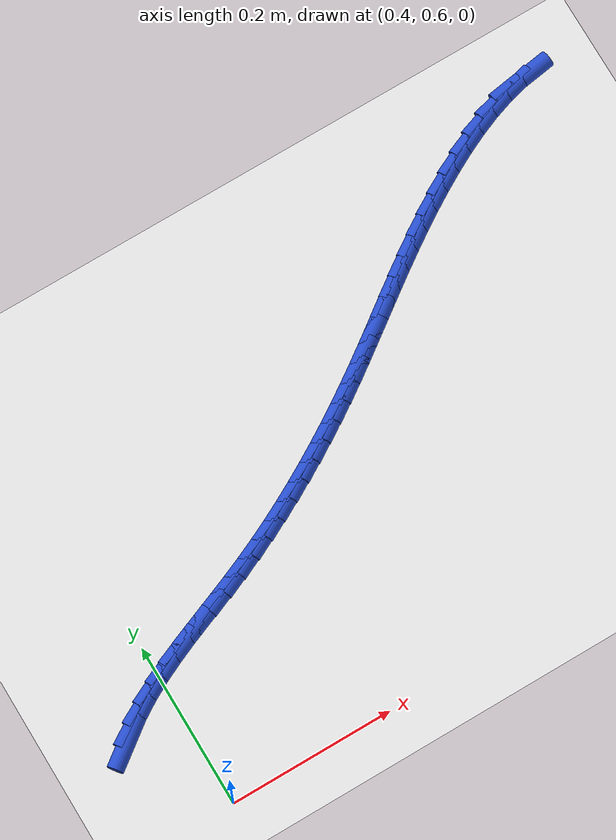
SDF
<sdf version="1.6">
 <world name="default">
  <model name="ground_plane">
   <static>1</static>
   <link name="link">
    <collision name="collision">
     <geometry><plane><normal>0 0 1</normal><size>100 100</size></plane></geometry>
     <surface><friction><ode><mu>100</mu><mu2>50</mu2></ode></friction></surface>
    </collision>
    <visual name="visual">
     <cast_shadows>0</cast_shadows>
     <geometry><plane><normal>0 0 1</normal><size>100 100</size></plane></geometry>
     <material>
      <script><uri>file://media/materials/scripts/gazebo.material</uri><name>Gazebo/WhiteGlow</name></script>
     </material>
    </visual>
   </link>
  </model>
  <model name="line">
   <link name="link_32">
    <pose>0.33855078986740716 0.7209870635358789 0.01 0 1.57 0.6444809370382992</pose>
    <collision name="collision">
     <geometry><cylinder><radius>0.01</radius><length>0.08</length></cylinder></geometry>
    </collision>
    <visual name="visual">
     <material>
      <script><name>Gazebo/Blue</name><uri>file://media/materials/scripts/gazebo.material</uri></script>
     </material>
     <geometry><cylinder><radius>0.01</radius><length>0.08</length></cylinder></geometry>
    </visual>
   </link>
   <link name="link_33">
    <pose>0.3580628552577548 0.735651007170612 0.01 0 1.57 0.5621185753499015</pose>
    <collision name="collision">
     <geometry><cylinder><radius>0.01</radius><length>0.08</length></cylinder></geometry>
    </collision>
    <visual name="visual">
     <material>
      <script><name>Gazebo/Blue</name><uri>file://media/materials/scripts/gazebo.material</uri></script>
     </material>
     <geometry><cylinder><radius>0.01</radius><length>0.08</length></cylinder></geometry>
    </visual>
   </link>
   <link name="link_34">
    <pose>0.3790080742850786 0.7488445007423732 0.01 0 1.57 0.49627526427810786</pose>
    <collision name="collision">
     <geometry><cylinder><radius>0.01</radius><length>0.08</length></cylinder></geometry>
    </collision>
    <visual name="visual">
     <material>
      <script><name>Gazebo/Blue</name><uri>file://media/materials/scripts/gazebo.material</uri></script>
     </material>
     <geometry><cylinder><radius>0.01</radius><length>0.08</length></cylinder></geometry>
    </visual>
   </link>
   <link name="link_35">
    <pose>0.40114118829294876 0.7608290489913966 0.01 0 1.57 0.44613655816575765</pose>
    <collision name="collision">
     <geometry><cylinder><radius>0.01</radius><length>0.08</length></cylinder></geometry>
    </collision>
    <visual name="visual">
     <material>
      <script><name>Gazebo/Blue</name><uri>file://media/materials/scripts/gazebo.material</uri></script>
     </material>
     <geometry><cylinder><radius>0.01</radius><length>0.08</length></cylinder></geometry>
    </visual>
   </link>
   <link name="link_36">
    <pose>0.42421693862493576 0.7718661566579151 0.01 0 1.57 0.4106589033545149</pose>
    <collision name="collision">
     <geometry><cylinder><radius>0.01</radius><length>0.08</length></cylinder></geometry>
    </collision>
    <visual name="visual">
     <material>
      <script><name>Gazebo/Blue</name><uri>file://media/materials/scripts/gazebo.material</uri></script>
     </material>
     <geometry><cylinder><radius>0.01</radius><length>0.08</length></cylinder></geometry>
    </visual>
   </link>
   <link name="link_37">
    <pose>0.44799006662460955 0.7822173284821623 0.01 0 1.57 0.3888989447708415</pose>
    <collision name="collision">
     <geometry><cylinder><radius>0.01</radius><length>0.08</length></cylinder></geometry>
    </collision>
    <visual name="visual">
     <material>
      <script><name>Gazebo/Blue</name><uri>file://media/materials/scripts/gazebo.material</uri></script>
     </material>
     <geometry><cylinder><radius>0.01</radius><length>0.08</length></cylinder></geometry>
    </visual>
   </link>
   <link name="link_38">
    <pose>0.4722153136355404 0.792144069204372 0.01 0 1.57 0.3801877695011549</pose>
    <collision name="collision">
     <geometry><cylinder><radius>0.01</radius><length>0.08</length></cylinder></geometry>
    </collision>
    <visual name="visual">
     <material>
      <script><name>Gazebo/Blue</name><uri>file://media/materials/scripts/gazebo.material</uri></script>
     </material>
     <geometry><cylinder><radius>0.01</radius><length>0.08</length></cylinder></geometry>
    </visual>
   </link>
   <link name="link_39">
    <pose>0.49664742100129866 0.8019078835647773 0.01 0 1.57 0.38420833800698007</pose>
    <collision name="collision">
     <geometry><cylinder><radius>0.01</radius><length>0.08</length></cylinder></geometry>
    </collision>
    <visual name="visual">
     <material>
      <script><name>Gazebo/Blue</name><uri>file://media/materials/scripts/gazebo.material</uri></script>
     </material>
     <geometry><cylinder><radius>0.01</radius><length>0.08</length></cylinder></geometry>
    </visual>
   </link>
   <link name="link_40">
    <pose>0.5210411300654538 0.8117702763036113 0.01 0 1.57 0.40090159263401615</pose>
    <collision name="collision">
     <geometry><cylinder><radius>0.01</radius><length>0.08</length></cylinder></geometry>
    </collision>
    <visual name="visual">
     <material>
      <script><name>Gazebo/Blue</name><uri>file://media/materials/scripts/gazebo.material</uri></script>
     </material>
     <geometry><cylinder><radius>0.01</radius><length>0.08</length></cylinder></geometry>
    </visual>
   </link>
   <link name="link_41">
    <pose>0.5451533514405603 0.8219903951768729 0.01 0 1.57 0.4250893750855071</pose>
    <collision name="collision">
     <geometry><cylinder><radius>0.01</radius><length>0.08</length></cylinder></geometry>
    </collision>
    <visual name="visual">
     <material>
      <script><name>Gazebo/Blue</name><uri>file://media/materials/scripts/gazebo.material</uri></script>
     </material>
     <geometry><cylinder><radius>0.01</radius><length>0.08</length></cylinder></geometry>
    </visual>
   </link>
   <link name="link_42">
    <pose>0.5688443479538682 0.832715092258177 0.01 0 1.57 0.44906626208551853</pose>
    <collision name="collision">
     <geometry><cylinder><radius>0.01</radius><length>0.08</length></cylinder></geometry>
    </collision>
    <visual name="visual">
     <material>
      <script><name>Gazebo/Blue</name><uri>file://media/materials/scripts/gazebo.material</uri></script>
     </material>
     <geometry><cylinder><radius>0.01</radius><length>0.08</length></cylinder></geometry>
    </visual>
   </link>
   <link name="link_43">
    <pose>0.5921208160401642 0.8439321145460308 0.01 0 1.57 0.4721823302625823</pose>
    <collision name="collision">
     <geometry><cylinder><radius>0.01</radius><length>0.08</length></cylinder></geometry>
    </collision>
    <visual name="visual">
     <material>
      <script><name>Gazebo/Blue</name><uri>file://media/materials/scripts/gazebo.material</uri></script>
     </material>
     <geometry><cylinder><radius>0.01</radius><length>0.08</length></cylinder></geometry>
    </visual>
   </link>
   <link name="link_44">
    <pose>0.6150005669375234 0.8556171324286488 0.01 0 1.57 0.49438379183548414</pose>
    <collision name="collision">
     <geometry><cylinder><radius>0.01</radius><length>0.08</length></cylinder></geometry>
    </collision>
    <visual name="visual">
     <material>
      <script><name>Gazebo/Blue</name><uri>file://media/materials/scripts/gazebo.material</uri></script>
     </material>
     <geometry><cylinder><radius>0.01</radius><length>0.08</length></cylinder></geometry>
    </visual>
   </link>
   <link name="link_45">
    <pose>0.6375014118840205 0.8677458162942455 0.01 0 1.57 0.5156229134149396</pose>
    <collision name="collision">
     <geometry><cylinder><radius>0.01</radius><length>0.08</length></cylinder></geometry>
    </collision>
    <visual name="visual">
     <material>
      <script><name>Gazebo/Blue</name><uri>file://media/materials/scripts/gazebo.material</uri></script>
     </material>
     <geometry><cylinder><radius>0.01</radius><length>0.08</length></cylinder></geometry>
    </visual>
   </link>
   <link name="link_46">
    <pose>0.6596411621177307 0.8802938365310352 0.01 0 1.57 0.5358578727387306</pose>
    <collision name="collision">
     <geometry><cylinder><radius>0.01</radius><length>0.08</length></cylinder></geometry>
    </collision>
    <visual name="visual">
     <material>
      <script><name>Gazebo/Blue</name><uri>file://media/materials/scripts/gazebo.material</uri></script>
     </material>
     <geometry><cylinder><radius>0.01</radius><length>0.08</length></cylinder></geometry>
    </visual>
   </link>
   <link name="link_47">
    <pose>0.6814376288767293 0.8932368635272324 0.01 0 1.57 0.5550524981400397</pose>
    <collision name="collision">
     <geometry><cylinder><radius>0.01</radius><length>0.08</length></cylinder></geometry>
    </collision>
    <visual name="visual">
     <material>
      <script><name>Gazebo/Blue</name><uri>file://media/materials/scripts/gazebo.material</uri></script>
     </material>
     <geometry><cylinder><radius>0.01</radius><length>0.08</length></cylinder></geometry>
    </visual>
   </link>
   <link name="link_48">
    <pose>0.7029086233990909 0.9065505676710512 0.01 0 1.57 0.5731759126766641</pose>
    <collision name="collision">
     <geometry><cylinder><radius>0.01</radius><length>0.08</length></cylinder></geometry>
    </collision>
    <visual name="visual">
     <material>
      <script><name>Gazebo/Blue</name><uri>file://media/materials/scripts/gazebo.material</uri></script>
     </material>
     <geometry><cylinder><radius>0.01</radius><length>0.08</length></cylinder></geometry>
    </visual>
   </link>
   <link name="link_49">
    <pose>0.7240719569228907 0.9202106193507061 0.01 0 1.57 0.5902021052740676</pose>
    <collision name="collision">
     <geometry><cylinder><radius>0.01</radius><length>0.08</length></cylinder></geometry>
    </collision>
    <visual name="visual">
     <material>
      <script><name>Gazebo/Blue</name><uri>file://media/materials/scripts/gazebo.material</uri></script>
     </material>
     <geometry><cylinder><radius>0.01</radius><length>0.08</length></cylinder></geometry>
    </visual>
   </link>
   <link name="link_50">
    <pose>0.7449454406862035 0.9341926889544114 0.01 0 1.57 0.6061026207565823</pose>
    <collision name="collision">
     <geometry><cylinder><radius>0.01</radius><length>0.08</length></cylinder></geometry>
    </collision>
    <visual name="visual">
     <material>
      <script><name>Gazebo/Blue</name><uri>file://media/materials/scripts/gazebo.material</uri></script>
     </material>
     <geometry><cylinder><radius>0.01</radius><length>0.08</length></cylinder></geometry>
    </visual>
   </link>
   <link name="link_51">
    <pose>0.7655470463820114 0.9484723497857341 0.01 0 1.57 0.6197247595487537</pose>
    <collision name="collision">
     <geometry><cylinder><radius>0.01</radius><length>0.08</length></cylinder></geometry>
    </collision>
    <visual name="visual">
     <material>
      <script><name>Gazebo/Blue</name><uri>file://media/materials/scripts/gazebo.material</uri></script>
     </material>
     <geometry><cylinder><radius>0.01</radius><length>0.08</length></cylinder></geometry>
    </visual>
   </link>
   <link name="link_52">
    <pose>0.7859211934904183 0.9630091726829545 0.01 0 1.57 0.6286331147928967</pose>
    <collision name="collision">
     <geometry><cylinder><radius>0.01</radius><length>0.08</length></cylinder></geometry>
    </collision>
    <visual name="visual">
     <material>
      <script><name>Gazebo/Blue</name><uri>file://media/materials/scripts/gazebo.material</uri></script>
     </material>
     <geometry><cylinder><radius>0.01</radius><length>0.08</length></cylinder></geometry>
    </visual>
   </link>
   <link name="link_53">
    <pose>0.8061679664141729 0.9777290479352668 0.01 0 1.57 0.6324843587315332</pose>
    <collision name="collision">
     <geometry><cylinder><radius>0.01</radius><length>0.08</length></cylinder></geometry>
    </collision>
    <visual name="visual">
     <material>
      <script><name>Gazebo/Blue</name><uri>file://media/materials/scripts/gazebo.material</uri></script>
     </material>
     <geometry><cylinder><radius>0.01</radius><length>0.08</length></cylinder></geometry>
    </visual>
   </link>
   <link name="link_54">
    <pose>0.8263944890279851 0.9925536065376879 0.01 0 1.57 0.6312869231386798</pose>
    <collision name="collision">
     <geometry><cylinder><radius>0.01</radius><length>0.08</length></cylinder></geometry>
    </collision>
    <visual name="visual">
     <material>
      <script><name>Gazebo/Blue</name><uri>file://media/materials/scripts/gazebo.material</uri></script>
     </material>
     <geometry><cylinder><radius>0.01</radius><length>0.08</length></cylinder></geometry>
    </visual>
   </link>
   <link name="link_55">
    <pose>0.8467078852065647 1.0074044794852337 0.01 0 1.57 0.6250978969013516</pose>
    <collision name="collision">
     <geometry><cylinder><radius>0.01</radius><length>0.08</length></cylinder></geometry>
    </collision>
    <visual name="visual">
     <material>
      <script><name>Gazebo/Blue</name><uri>file://media/materials/scripts/gazebo.material</uri></script>
     </material>
     <geometry><cylinder><radius>0.01</radius><length>0.08</length></cylinder></geometry>
    </visual>
   </link>
   <link name="link_56">
    <pose>0.8672152788246221 1.0222032977729214 0.01 0 1.57 0.6140221579124837</pose>
    <collision name="collision">
     <geometry><cylinder><radius>0.01</radius><length>0.08</length></cylinder></geometry>
    </collision>
    <visual name="visual">
     <material>
      <script><name>Gazebo/Blue</name><uri>file://media/materials/scripts/gazebo.material</uri></script>
     </material>
     <geometry><cylinder><radius>0.01</radius><length>0.08</length></cylinder></geometry>
    </visual>
   </link>
   <link name="link_57">
    <pose>0.8880237937568672 1.0368716923957675 0.01 0 1.57 0.5982138817994356</pose>
    <collision name="collision">
     <geometry><cylinder><radius>0.01</radius><length>0.08</length></cylinder></geometry>
    </collision>
    <visual name="visual">
     <material>
      <script><name>Gazebo/Blue</name><uri>file://media/materials/scripts/gazebo.material</uri></script>
     </material>
     <geometry><cylinder><radius>0.01</radius><length>0.08</length></cylinder></geometry>
    </visual>
   </link>
   <link name="link_58">
    <pose>0.9092405538780102 1.0513312943487885 0.01 0 1.57 0.5778797432441662</pose>
    <collision name="collision">
     <geometry><cylinder><radius>0.01</radius><length>0.08</length></cylinder></geometry>
    </collision>
    <visual name="visual">
     <material>
      <script><name>Gazebo/Blue</name><uri>file://media/materials/scripts/gazebo.material</uri></script>
     </material>
     <geometry><cylinder><radius>0.01</radius><length>0.08</length></cylinder></geometry>
    </visual>
   </link>
   <link name="link_59">
    <pose>0.9309726830627609 1.0655037346270009 0.01 0 1.57 0.553282765120305</pose>
    <collision name="collision">
     <geometry><cylinder><radius>0.01</radius><length>0.08</length></cylinder></geometry>
    </collision>
    <visual name="visual">
     <material>
      <script><name>Gazebo/Blue</name><uri>file://media/materials/scripts/gazebo.material</uri></script>
     </material>
     <geometry><cylinder><radius>0.01</radius><length>0.08</length></cylinder></geometry>
    </visual>
   </link>
   <link name="link_60">
    <pose>0.9533273051858295 1.0793106442254214 0.01 0 1.57 0.5244381603737651</pose>
    <collision name="collision">
     <geometry><cylinder><radius>0.01</radius><length>0.08</length></cylinder></geometry>
    </collision>
    <visual name="visual">
     <material>
      <script><name>Gazebo/Blue</name><uri>file://media/materials/scripts/gazebo.material</uri></script>
     </material>
     <geometry><cylinder><radius>0.01</radius><length>0.08</length></cylinder></geometry>
    </visual>
   </link>
   <link name="link_61">
    <pose>0.9763883771816332 1.092650782353551 0.01 0 1.57 0.4891227898524606</pose>
    <collision name="collision">
     <geometry><cylinder><radius>0.01</radius><length>0.08</length></cylinder></geometry>
    </collision>
    <visual name="visual">
     <material>
      <script><name>Gazebo/Blue</name><uri>file://media/materials/scripts/gazebo.material</uri></script>
     </material>
     <geometry><cylinder><radius>0.01</radius><length>0.08</length></cylinder></geometry>
    </visual>
   </link>
   <link name="link_62">
    <pose>1.0000708604780975 1.1052560657751973 0.01 0 1.57 0.4454749804757394</pose>
    <collision name="collision">
     <geometry><cylinder><radius>0.01</radius><length>0.08</length></cylinder></geometry>
    </collision>
    <visual name="visual">
     <material>
      <script><name>Gazebo/Blue</name><uri>file://media/materials/scripts/gazebo.material</uri></script>
     </material>
     <geometry><cylinder><radius>0.01</radius><length>0.08</length></cylinder></geometry>
    </visual>
   </link>
   <link name="link_63">
    <pose>1.0242148332927983 1.1167844820816408 0.01 0 1.57 0.3921287623526055</pose>
    <collision name="collision">
     <geometry><cylinder><radius>0.01</radius><length>0.08</length></cylinder></geometry>
    </collision>
    <visual name="visual">
     <material>
      <script><name>Gazebo/Blue</name><uri>file://media/materials/scripts/gazebo.material</uri></script>
     </material>
     <geometry><cylinder><radius>0.01</radius><length>0.08</length></cylinder></geometry>
    </visual>
   </link>
   <link name="link_64">
    <pose>1.0486600386861396 1.1268936879770057 0.01 0 1.57 0.32731372559247807</pose>
    <collision name="collision">
     <geometry><cylinder><radius>0.01</radius><length>0.08</length></cylinder></geometry>
    </collision>
    <visual name="visual">
     <material>
      <script><name>Gazebo/Blue</name><uri>file://media/materials/scripts/gazebo.material</uri></script>
     </material>
     <geometry><cylinder><radius>0.01</radius><length>0.08</length></cylinder></geometry>
    </visual>
   </link>
   <link name="link_65">
    <pose>1.0732462197185249 1.135241340165418 0.01 0 1.57 0.24888368320304344</pose>
    <collision name="collision">
     <geometry><cylinder><radius>0.01</radius><length>0.08</length></cylinder></geometry>
    </collision>
    <visual name="visual">
     <material>
      <script><name>Gazebo/Blue</name><uri>file://media/materials/scripts/gazebo.material</uri></script>
     </material>
     <geometry><cylinder><radius>0.01</radius><length>0.08</length></cylinder></geometry>
    </visual>
   </link>
   <link name="link_66">
    <pose>1.097813119450359 1.141485095351003 0.01 0 1.57 0.15447592653696843</pose>
    <collision name="collision">
     <geometry><cylinder><radius>0.01</radius><length>0.08</length></cylinder></geometry>
    </collision>
    <visual name="visual">
     <material>
      <script><name>Gazebo/Blue</name><uri>file://media/materials/scripts/gazebo.material</uri></script>
     </material>
     <geometry><cylinder><radius>0.01</radius><length>0.08</length></cylinder></geometry>
    </visual>
   </link>
  </model>
 </world>
</sdf>
